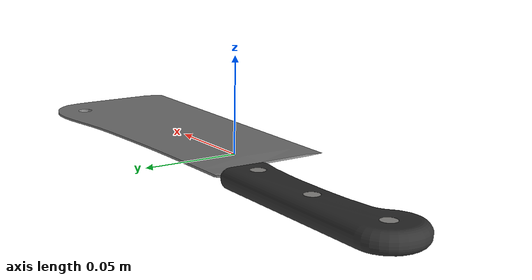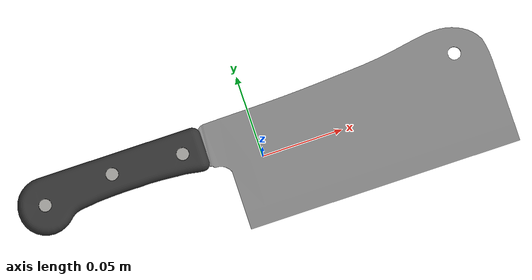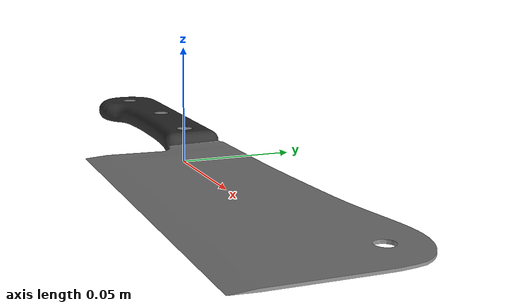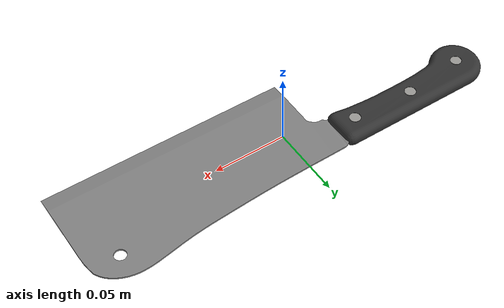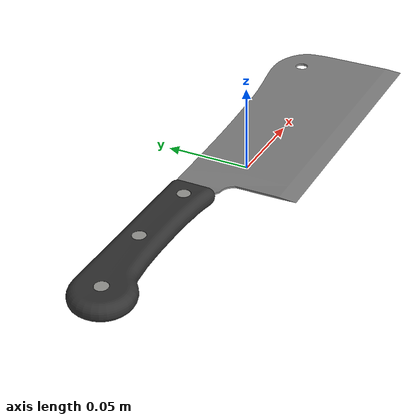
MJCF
<?xml version="1.0" ?>
<mujoco model="kitchen_knife_1">
	<compiler meshdir="kitchen_knife_1/meshes" texturedir="kitchen_knife_1/textures" angle="radian" autolimits="true" balanceinertia="true" boundmass="0.000001" boundinertia="0.000001"/>
	<default>
		<default class="visual">
			<geom contype="0" conaffinity="0"/>
		</default>
		<default class="collision">
			<geom rgba="1.0 0.0 0.0 0.0"/>
		</default>
	</default>
	<asset>
		<mesh name="HiltWood" file="stl/HiltWood.stl" scale="1.0 1.0 1.0"/>
		<mesh name="HiltWood_001" file="stl/HiltWood_001.stl" scale="1.0 1.0 1.0"/>
		<mesh name="HiltWood_002" file="stl/HiltWood_002.stl" scale="1.0 1.0 1.0"/>
		<mesh name="HiltWood_003" file="stl/HiltWood_003.stl" scale="1.0 1.0 1.0"/>
		<mesh name="HiltWood_004" file="stl/HiltWood_004.stl" scale="1.0 1.0 1.0"/>
		<mesh name="HiltWood_005" file="stl/HiltWood_005.stl" scale="1.0 1.0 1.0"/>
		<mesh name="HiltWood_006" file="stl/HiltWood_006.stl" scale="1.0 1.0 1.0"/>
		<mesh name="HiltMetal" file="stl/HiltMetal.stl" scale="1.0 1.0 1.0"/>
		<mesh name="HiltMetal_001" file="stl/HiltMetal_001.stl" scale="1.0 1.0 1.0"/>
		<mesh name="HiltMetal_002" file="stl/HiltMetal_002.stl" scale="1.0 1.0 1.0"/>
		<mesh name="HiltMetal_003" file="stl/HiltMetal_003.stl" scale="1.0 1.0 1.0"/>
		<mesh name="KitchenKnifeBlade" file="stl/KitchenKnifeBlade.stl" scale="1.0 1.0 1.0"/>
		<mesh name="KitchenKnifeBlade_001" file="stl/KitchenKnifeBlade_001.stl" scale="1.0 1.0 1.0"/>
		<mesh name="KitchenKnifeBlade_002" file="stl/KitchenKnifeBlade_002.stl" scale="1.0 1.0 1.0"/>
		<mesh name="KitchenKnifeBlade_003" file="stl/KitchenKnifeBlade_003.stl" scale="1.0 1.0 1.0"/>
		<mesh name="KitchenKnifeBlade_004" file="stl/KitchenKnifeBlade_004.stl" scale="1.0 1.0 1.0"/>
		<material name="M_HiltWood_001" rgba="0.20000000298023224 0.20000000298023224 0.20000000298023224 1.0" emission="0.0"/>
		<material name="M_HiltMetal_001" rgba="0.6195999979972839 0.6157000064849854 0.6000000238418579 1.0" emission="0.0"/>
		<material name="M_KitchenKnifeBlade_001" rgba="0.5181000232696533 0.5181000232696533 0.5181000232696533 1.0" emission="0.0"/>
	</asset>
	<worldbody>
		<body name="kitchen_knife_1" pos="0.0 0.0 0.0" quat="1.0 0.0 0.0 0.0">
			<body name="hilt_wood" pos="0.0 0.0 0.0" quat="1.0 0.0 0.0 0.0">
				<inertial mass="0.2210218608379364" pos="-0.09236938506364822 0.01583183743059635 9.759287422639318e-07" quat="0.9973252415657043 9.049318759934977e-05 -3.7194793094386114e-06 -0.07309133559465408" diaginertia="2.4937024136306718e-05 0.0021858687978237867 0.002207227284088731"/>
				<geom name="HiltWood" type="mesh" pos="0.0 0.0 0.0" quat="1.0 0.0 0.0 0.0" mesh="HiltWood" material="M_HiltWood_001" class="visual"/>
				<geom name="HiltWood_001" type="mesh" pos="0.0 0.0 0.0" quat="1.0 0.0 0.0 0.0" mesh="HiltWood_001" class="collision"/>
				<geom name="HiltWood_002" type="mesh" pos="0.0 0.0 0.0" quat="1.0 0.0 0.0 0.0" mesh="HiltWood_002" class="collision"/>
				<geom name="HiltWood_003" type="mesh" pos="0.0 0.0 0.0" quat="1.0 0.0 0.0 0.0" mesh="HiltWood_003" class="collision"/>
				<geom name="HiltWood_004" type="mesh" pos="0.0 0.0 0.0" quat="1.0 0.0 0.0 0.0" mesh="HiltWood_004" class="collision"/>
				<geom name="HiltWood_005" type="mesh" pos="0.0 0.0 0.0" quat="1.0 0.0 0.0 0.0" mesh="HiltWood_005" class="collision"/>
				<geom name="HiltWood_006" type="mesh" pos="0.0 0.0 0.0" quat="1.0 0.0 0.0 0.0" mesh="HiltWood_006" class="collision"/>
			</body>
			<body name="kitchen_knife_blade" pos="0.0 0.0 0.0" quat="1.0 0.0 0.0 0.0">
				<inertial mass="0.14702057838439941" pos="0.054740142077207565 0.0008429145091213286 5.54048847334343e-06" quat="0.9999810457229614 1.075580803444609e-05 -2.4127502911142074e-05 -0.006152814254164696" diaginertia="5.567731932387687e-05 0.0009264085674658418 0.0009820343693718314"/>
				<geom name="KitchenKnifeBlade" type="mesh" pos="0.0 0.0 0.0" quat="1.0 0.0 0.0 0.0" mesh="KitchenKnifeBlade" material="M_KitchenKnifeBlade_001" class="visual"/>
				<geom name="KitchenKnifeBlade_001" type="mesh" pos="0.0 0.0 0.0" quat="1.0 0.0 0.0 0.0" mesh="KitchenKnifeBlade_001" class="collision"/>
				<geom name="KitchenKnifeBlade_002" type="mesh" pos="0.0 0.0 0.0" quat="1.0 0.0 0.0 0.0" mesh="KitchenKnifeBlade_002" class="collision"/>
				<geom name="KitchenKnifeBlade_003" type="mesh" pos="0.0 0.0 0.0" quat="1.0 0.0 0.0 0.0" mesh="KitchenKnifeBlade_003" class="collision"/>
				<geom name="KitchenKnifeBlade_004" type="mesh" pos="0.0 0.0 0.0" quat="1.0 0.0 0.0 0.0" mesh="KitchenKnifeBlade_004" class="collision"/>
			</body>
			<body name="hilt_metal" pos="0.0 0.0 0.0" quat="1.0 0.0 0.0 0.0">
				<inertial mass="0.010889727622270584" pos="-0.08868007361888885 0.015244059264659882 -7.359191922517994e-09" quat="0.9974652528762817 -3.4630334084795322e-06 2.839890385075705e-07 -0.0711556077003479" diaginertia="6.82629547554825e-07 0.00010160837700823322 0.00010209701576968655"/>
				<geom name="HiltMetal" type="mesh" pos="0.0 0.0 0.0" quat="1.0 0.0 0.0 0.0" mesh="HiltMetal" material="M_HiltMetal_001" class="visual"/>
				<geom name="HiltMetal_001" type="mesh" pos="0.0 0.0 0.0" quat="1.0 0.0 0.0 0.0" mesh="HiltMetal_001" class="collision"/>
				<geom name="HiltMetal_002" type="mesh" pos="0.0 0.0 0.0" quat="1.0 0.0 0.0 0.0" mesh="HiltMetal_002" class="collision"/>
				<geom name="HiltMetal_003" type="mesh" pos="0.0 0.0 0.0" quat="1.0 0.0 0.0 0.0" mesh="HiltMetal_003" class="collision"/>
			</body>
		</body>
	</worldbody>
	<equality/>
</mujoco>
